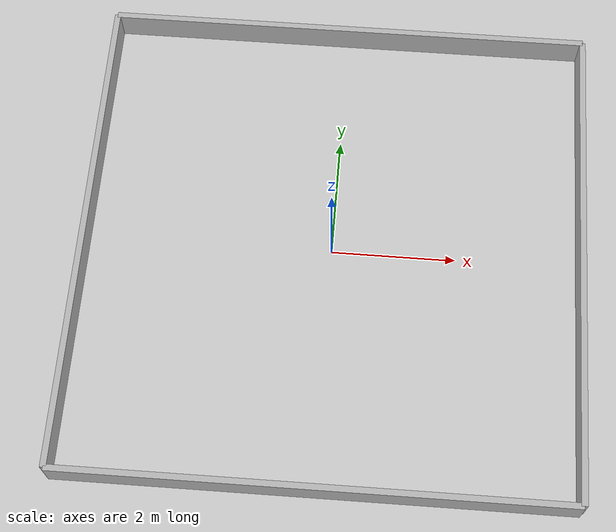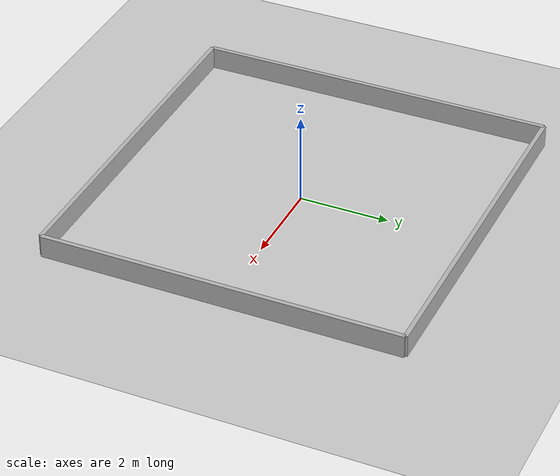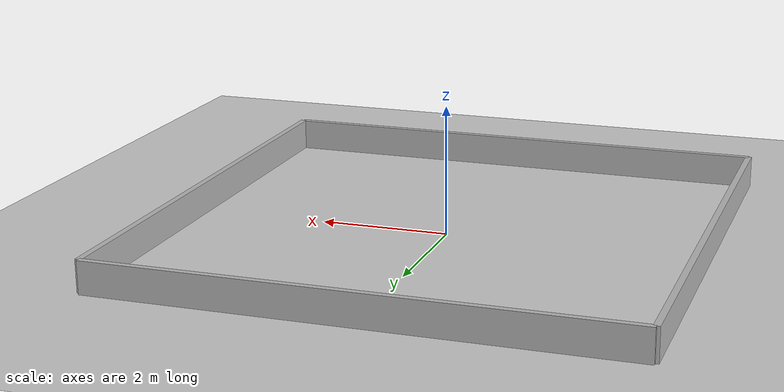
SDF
<?xml version="1.0" ?>
<!--
  meta-rl-tb3 validation world: empty 8x8 m arena (walls at +/- 4 m).

-->
<sdf version="1.6">
  <world name="arena_8x8_empty">

    <include><uri>model://sun</uri></include>
    <include><uri>model://ground_plane</uri></include>

    <plugin name="gazebo_ros_state" filename="libgazebo_ros_state.so">
      <ros>
        <namespace>/gazebo</namespace>
      </ros>
      <update_rate>1.0</update_rate>
    </plugin>

    <!-- Arena walls: 4 thin boxes forming an 8x8 enclosure (walls at +/-4). -->
    <model name="wall_north">
      <static>true</static>
      <pose>0 4 0.25 0 0 0</pose>
      <link name="link">
        <collision name="c"><geometry><box><size>8 0.1 0.5</size></box></geometry></collision>
        <visual name="v"><geometry><box><size>8 0.1 0.5</size></box></geometry></visual>
      </link>
    </model>
    <model name="wall_south">
      <static>true</static>
      <pose>0 -4 0.25 0 0 0</pose>
      <link name="link">
        <collision name="c"><geometry><box><size>8 0.1 0.5</size></box></geometry></collision>
        <visual name="v"><geometry><box><size>8 0.1 0.5</size></box></geometry></visual>
      </link>
    </model>
    <model name="wall_east">
      <static>true</static>
      <pose>4 0 0.25 0 0 0</pose>
      <link name="link">
        <collision name="c"><geometry><box><size>0.1 8 0.5</size></box></geometry></collision>
        <visual name="v"><geometry><box><size>0.1 8 0.5</size></box></geometry></visual>
      </link>
    </model>
    <model name="wall_west">
      <static>true</static>
      <pose>-4 0 0.25 0 0 0</pose>
      <link name="link">
        <collision name="c"><geometry><box><size>0.1 8 0.5</size></box></geometry></collision>
        <visual name="v"><geometry><box><size>0.1 8 0.5</size></box></geometry></visual>
      </link>
    </model>

    <physics type="ode">
      <max_step_size>0.001</max_step_size>
      <real_time_update_rate>1000</real_time_update_rate>
    </physics>
  </world>
</sdf>
